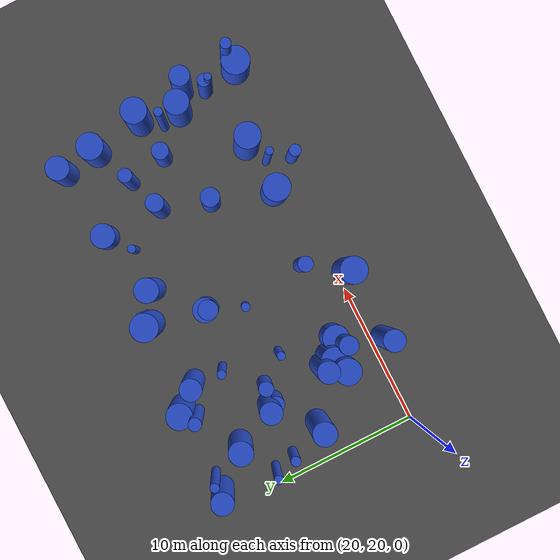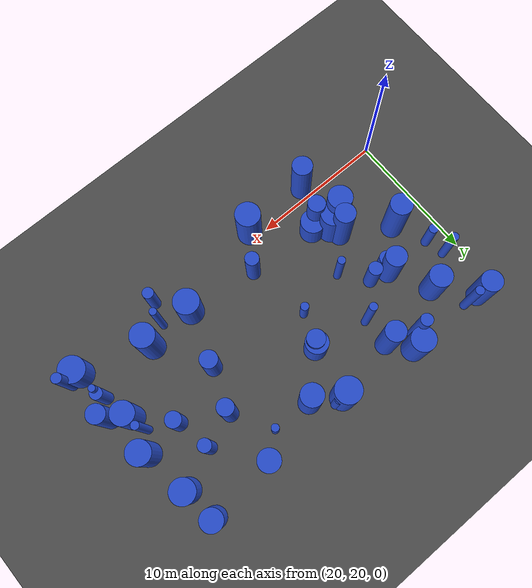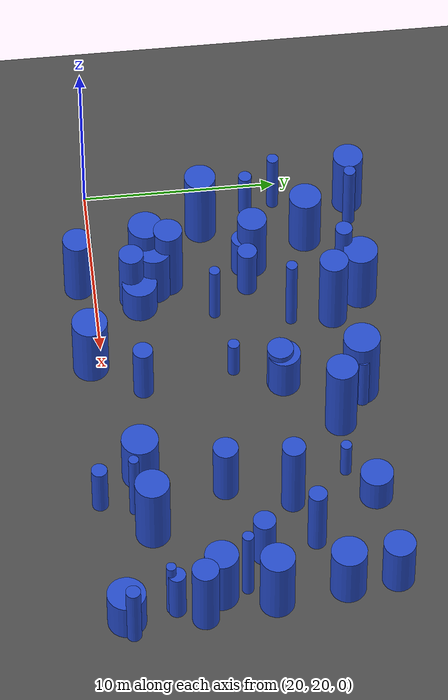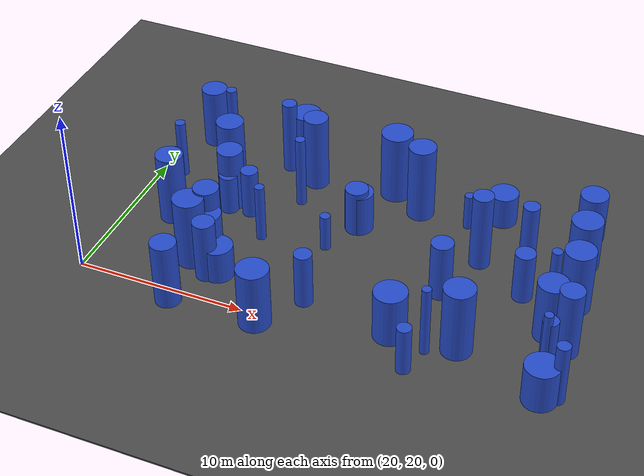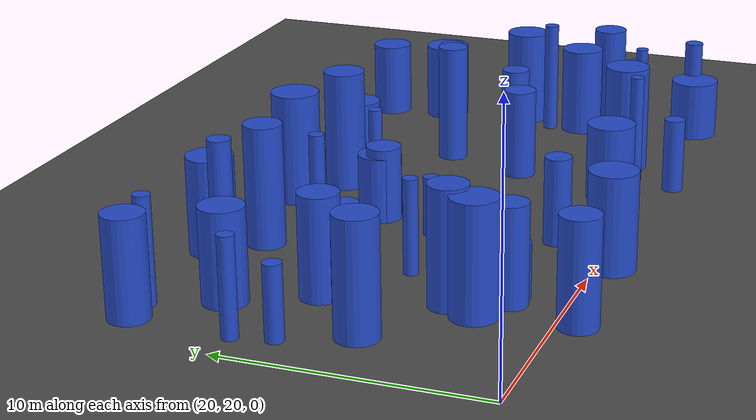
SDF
<sdf version="1.6">
 <world name="default">
  <model name="ground_plane">
   <static>1</static>
   <link name="link">
    <collision name="collision">
     <geometry><plane><normal>0 0 1</normal><size>100 100</size></plane></geometry>
     <surface><friction><ode><mu>100</mu><mu2>50</mu2></ode></friction></surface>
    </collision>
    <visual name="visual">
     <cast_shadows>0</cast_shadows>
     <geometry><plane><normal>0 0 1</normal><size>100 100</size></plane></geometry>
     <material>
      <script><uri>file://media/materials/scripts/gazebo.material</uri><name>Gazebo/Grey</name></script>
     </material>
    </visual>
   </link>
  </model>
  <model name="asphalt_plane">
   <static>1</static>
   <link name="link">
    <collision name="collision"><geometry><box><size>200 200 0.1</size></box></geometry></collision>
    <visual name="visual">
     <cast_shadows>0</cast_shadows>
     <geometry><box><size>200 200 0.1</size></box></geometry>
     <material>
      <script>
       <uri>model://asphalt_plane/materials/scripts</uri>
       <uri>model://asphalt_plane/materials/textures</uri>
       <name>vrc/asphalt</name>
      </script>
     </material>
    </visual>
   </link>
  </model>
  <model name="7">
   <static>0</static>
   <link name="link">
    <inertial>
     <mass>2</mass>
     <inertia>
      <ixx>0.928742</ixx>
      <ixy>0</ixy>
      <ixz>0</ixz>
      <iyy>0.928742</iyy>
      <iyz>0</iyz>
      <izz>0.0804717</izz>
     </inertia>
    </inertial>
    <collision name="collision">
     <geometry><cylinder><length>2.3089</length><radius>0.283675</radius></cylinder></geometry>
     <surface><contact><collide_without_contact>1</collide_without_contact></contact></surface>
    </collision>
    <visual name="visual">
     <geometry><cylinder><length>2.3089</length><radius>0.283675</radius></cylinder></geometry>
     <material>
      <script><uri>file://media/materials/scripts/gazebo.material</uri><name>Gazebo/Blue</name></script>
     </material>
    </visual>
    <gravity>0</gravity>
   </link>
   <pose>38.9814 31.6696 1.15445 0 -0 0</pose>
  </model>
  <model name="15">
   <static>0</static>
   <link name="link">
    <inertial>
     <mass>2</mass>
     <inertia><ixx>2.90388</ixx><ixy>0</ixy><ixz>0</ixz><iyy>2.90388</iyy><iyz>0</iyz><izz>0.578559</izz></inertia>
    </inertial>
    <collision name="collision">
     <geometry><cylinder><length>3.96076</length><radius>0.76063</radius></cylinder></geometry>
     <surface><contact><collide_without_contact>1</collide_without_contact></contact></surface>
    </collision>
    <visual name="visual">
     <geometry><cylinder><length>3.96076</length><radius>0.76063</radius></cylinder></geometry>
     <material>
      <script><uri>file://media/materials/scripts/gazebo.material</uri><name>Gazebo/Blue</name></script>
     </material>
    </visual>
    <gravity>0</gravity>
   </link>
   <pose>25.3755 28.3182 1.98038 0 -0 0</pose>
  </model>
  <model name="21">
   <static>0</static>
   <link name="link">
    <inertial>
     <mass>2</mass>
     <inertia><ixx>4.07181</ixx><ixy>0</ixy><ixz>0</ixz><iyy>4.07181</iyy><iyz>0</iyz><izz>0.543778</izz></inertia>
    </inertial>
    <collision name="collision">
     <geometry><cylinder><length>4.77488</length><radius>0.737413</radius></cylinder></geometry>
     <surface><contact><collide_without_contact>1</collide_without_contact></contact></surface>
    </collision>
    <visual name="visual">
     <geometry><cylinder><length>4.77488</length><radius>0.737413</radius></cylinder></geometry>
     <material>
      <script><uri>file://media/materials/scripts/gazebo.material</uri><name>Gazebo/Blue</name></script>
     </material>
    </visual>
    <gravity>0</gravity>
   </link>
   <pose>29.1484 32.1402 2.38744 0 -0 0</pose>
  </model>
  <model name="23">
   <static>0</static>
   <link name="link">
    <inertial>
     <mass>2</mass>
     <inertia><ixx>2.06721</ixx><ixy>0</ixy><ixz>0</ixz><iyy>2.06721</iyy><iyz>0</iyz><izz>0.898479</izz></inertia>
    </inertial>
    <collision name="collision">
     <geometry><cylinder><length>3.11573</length><radius>0.947881</radius></cylinder></geometry>
     <surface><contact><collide_without_contact>1</collide_without_contact></contact></surface>
    </collision>
    <visual name="visual">
     <geometry><cylinder><length>3.11573</length><radius>0.947881</radius></cylinder></geometry>
     <material>
      <script><uri>file://media/materials/scripts/gazebo.material</uri><name>Gazebo/Blue</name></script>
     </material>
    </visual>
    <gravity>0</gravity>
   </link>
   <pose>38.1808 21.3346 1.55787 0 -0 0</pose>
  </model>
  <model name="30">
   <static>0</static>
   <link name="link">
    <inertial>
     <mass>2</mass>
     <inertia><ixx>2.57065</ixx><ixy>0</ixy><ixz>0</ixz><iyy>2.57065</iyy><iyz>0</iyz><izz>0.140555</izz></inertia>
    </inertial>
    <collision name="collision">
     <geometry><cylinder><length>3.87327</length><radius>0.374907</radius></cylinder></geometry>
     <surface><contact><collide_without_contact>1</collide_without_contact></contact></surface>
    </collision>
    <visual name="visual">
     <geometry><cylinder><length>3.87327</length><radius>0.374907</radius></cylinder></geometry>
     <material>
      <script><uri>file://media/materials/scripts/gazebo.material</uri><name>Gazebo/Blue</name></script>
     </material>
    </visual>
    <gravity>0</gravity>
   </link>
   <pose>47.8314 20.152 1.93664 0 -0 0</pose>
  </model>
  <model name="33">
   <static>0</static>
   <link name="link">
    <inertial>
     <mass>2</mass>
     <inertia><ixx>3.30687</ixx><ixy>0</ixy><ixz>0</ixz><iyy>3.30687</iyy><iyz>0</iyz><izz>0.069358</izz></inertia>
    </inertial>
    <collision name="collision">
     <geometry><cylinder><length>4.43093</length><radius>0.263359</radius></cylinder></geometry>
     <surface><contact><collide_without_contact>1</collide_without_contact></contact></surface>
    </collision>
    <visual name="visual">
     <geometry><cylinder><length>4.43093</length><radius>0.263359</radius></cylinder></geometry>
     <material>
      <script><uri>file://media/materials/scripts/gazebo.material</uri><name>Gazebo/Blue</name></script>
     </material>
    </visual>
    <gravity>0</gravity>
   </link>
   <pose>40.3358 20.8522 2.21546 0 -0 0</pose>
  </model>
  <model name="40">
   <static>0</static>
   <link name="link">
    <inertial>
     <mass>2</mass>
     <inertia><ixx>3.12245</ixx><ixy>0</ixy><ixz>0</ixz><iyy>3.12245</iyy><iyz>0</iyz><izz>0.553682</izz></inertia>
    </inertial>
    <collision name="collision">
     <geometry><cylinder><length>4.13202</length><radius>0.744098</radius></cylinder></geometry>
     <surface><contact><collide_without_contact>1</collide_without_contact></contact></surface>
    </collision>
    <visual name="visual">
     <geometry><cylinder><length>4.13202</length><radius>0.744098</radius></cylinder></geometry>
     <material>
      <script><uri>file://media/materials/scripts/gazebo.material</uri><name>Gazebo/Blue</name></script>
     </material>
    </visual>
    <gravity>0</gravity>
   </link>
   <pose>25.9653 19.207 2.06601 0 -0 0</pose>
  </model>
  <model name="44">
   <static>0</static>
   <link name="link">
    <inertial>
     <mass>2</mass>
     <inertia><ixx>1.7448</ixx><ixy>0</ixy><ixz>0</ixz><iyy>1.7448</iyy><iyz>0</iyz><izz>0.25816</izz></inertia>
    </inertial>
    <collision name="collision">
     <geometry><cylinder><length>3.11357</length><radius>0.508094</radius></cylinder></geometry>
     <surface><contact><collide_without_contact>1</collide_without_contact></contact></surface>
    </collision>
    <visual name="visual">
     <geometry><cylinder><length>3.11357</length><radius>0.508094</radius></cylinder></geometry>
     <material>
      <script><uri>file://media/materials/scripts/gazebo.material</uri><name>Gazebo/Blue</name></script>
     </material>
    </visual>
    <gravity>0</gravity>
   </link>
   <pose>26.7685 27.9284 1.55679 0 -0 0</pose>
  </model>
  <model name="58">
   <static>0</static>
   <link name="link">
    <inertial>
     <mass>2</mass>
     <inertia><ixx>2.80734</ixx><ixy>0</ixy><ixz>0</ixz><iyy>2.80734</iyy><iyz>0</iyz><izz>0.790535</izz></inertia>
    </inertial>
    <collision name="collision">
     <geometry><cylinder><length>3.80426</length><radius>0.889121</radius></cylinder></geometry>
     <surface><contact><collide_without_contact>1</collide_without_contact></contact></surface>
    </collision>
    <visual name="visual">
     <geometry><cylinder><length>3.80426</length><radius>0.889121</radius></cylinder></geometry>
     <material>
      <script><uri>file://media/materials/scripts/gazebo.material</uri><name>Gazebo/Blue</name></script>
     </material>
    </visual>
    <gravity>0</gravity>
   </link>
   <pose>27.8441 33.6819 1.90213 0 -0 0</pose>
  </model>
  <model name="69">
   <static>0</static>
   <link name="link">
    <inertial>
     <mass>2</mass>
     <inertia><ixx>2.55552</ixx><ixy>0</ixy><ixz>0</ixz><iyy>2.55552</iyy><iyz>0</iyz><izz>0.698081</izz></inertia>
    </inertial>
    <collision name="collision">
     <geometry><cylinder><length>3.63853</length><radius>0.835512</radius></cylinder></geometry>
     <surface><contact><collide_without_contact>1</collide_without_contact></contact></surface>
    </collision>
    <visual name="visual">
     <geometry><cylinder><length>3.63853</length><radius>0.835512</radius></cylinder></geometry>
     <material>
      <script><uri>file://media/materials/scripts/gazebo.material</uri><name>Gazebo/Blue</name></script>
     </material>
    </visual>
    <gravity>0</gravity>
   </link>
   <pose>23.89 31.2537 1.81926 0 -0 0</pose>
  </model>
  <model name="78">
   <static>0</static>
   <link name="link">
    <inertial>
     <mass>2</mass>
     <inertia><ixx>3.89358</ixx><ixy>0</ixy><ixz>0</ixz><iyy>3.89358</iyy><iyz>0</iyz><izz>0.194985</izz></inertia>
    </inertial>
    <collision name="collision">
     <geometry><cylinder><length>4.77247</length><radius>0.441571</radius></cylinder></geometry>
     <surface><contact><collide_without_contact>1</collide_without_contact></contact></surface>
    </collision>
    <visual name="visual">
     <geometry><cylinder><length>4.77247</length><radius>0.441571</radius></cylinder></geometry>
     <material>
      <script><uri>file://media/materials/scripts/gazebo.material</uri><name>Gazebo/Blue</name></script>
     </material>
    </visual>
    <gravity>0</gravity>
   </link>
   <pose>27.1001 32.8841 2.38624 0 -0 0</pose>
  </model>
  <model name="80">
   <static>0</static>
   <link name="link">
    <inertial>
     <mass>2</mass>
     <inertia><ixx>4.09311</ixx><ixy>0</ixy><ixz>0</ixz><iyy>4.09311</iyy><iyz>0</iyz><izz>0.357033</izz></inertia>
    </inertial>
    <collision name="collision">
     <geometry><cylinder><length>4.8464</length><radius>0.597523</radius></cylinder></geometry>
     <surface><contact><collide_without_contact>1</collide_without_contact></contact></surface>
    </collision>
    <visual name="visual">
     <geometry><cylinder><length>4.8464</length><radius>0.597523</radius></cylinder></geometry>
     <material>
      <script><uri>file://media/materials/scripts/gazebo.material</uri><name>Gazebo/Blue</name></script>
     </material>
    </visual>
    <gravity>0</gravity>
   </link>
   <pose>40.6499 28.8101 2.4232 0 -0 0</pose>
  </model>
  <model name="81">
   <static>0</static>
   <link name="link">
    <inertial>
     <mass>2</mass>
     <inertia><ixx>3.58</ixx><ixy>0</ixy><ixz>0</ixz><iyy>3.58</iyy><iyz>0</iyz><izz>0.775805</izz></inertia>
    </inertial>
    <collision name="collision">
     <geometry><cylinder><length>4.37637</length><radius>0.880798</radius></cylinder></geometry>
     <surface><contact><collide_without_contact>1</collide_without_contact></contact></surface>
    </collision>
    <visual name="visual">
     <geometry><cylinder><length>4.37637</length><radius>0.880798</radius></cylinder></geometry>
     <material>
      <script><uri>file://media/materials/scripts/gazebo.material</uri><name>Gazebo/Blue</name></script>
     </material>
    </visual>
    <gravity>0</gravity>
   </link>
   <pose>41.8431 21.6383 2.18818 0 -0 0</pose>
  </model>
  <model name="82">
   <static>0</static>
   <link name="link">
    <inertial>
     <mass>2</mass>
     <inertia><ixx>3.70102</ixx><ixy>0</ixy><ixz>0</ixz><iyy>3.70102</iyy><iyz>0</iyz><izz>0.657066</izz></inertia>
    </inertial>
    <collision name="collision">
     <geometry><cylinder><length>4.49832</length><radius>0.810596</radius></cylinder></geometry>
     <surface><contact><collide_without_contact>1</collide_without_contact></contact></surface>
    </collision>
    <visual name="visual">
     <geometry><cylinder><length>4.49832</length><radius>0.810596</radius></cylinder></geometry>
     <material>
      <script><uri>file://media/materials/scripts/gazebo.material</uri><name>Gazebo/Blue</name></script>
     </material>
    </visual>
    <gravity>0</gravity>
   </link>
   <pose>22.7638 25.8733 2.24916 0 -0 0</pose>
  </model>
  <model name="83">
   <static>0</static>
   <link name="link">
    <inertial>
     <mass>2</mass>
     <inertia><ixx>1.72502</ixx><ixy>0</ixy><ixz>0</ixz><iyy>1.72502</iyy><iyz>0</iyz><izz>0.220377</izz></inertia>
    </inertial>
    <collision name="collision">
     <geometry><cylinder><length>3.11272</length><radius>0.469444</radius></cylinder></geometry>
     <surface><contact><collide_without_contact>1</collide_without_contact></contact></surface>
    </collision>
    <visual name="visual">
     <geometry><cylinder><length>3.11272</length><radius>0.469444</radius></cylinder></geometry>
     <material>
      <script><uri>file://media/materials/scripts/gazebo.material</uri><name>Gazebo/Blue</name></script>
     </material>
    </visual>
    <gravity>0</gravity>
   </link>
   <pose>26.6132 23.1771 1.55636 0 -0 0</pose>
  </model>
  <model name="88">
   <static>0</static>
   <link name="link">
    <inertial>
     <mass>2</mass>
     <inertia><ixx>4.23171</ixx><ixy>0</ixy><ixz>0</ixz><iyy>4.23171</iyy><iyz>0</iyz><izz>0.655264</izz></inertia>
    </inertial>
    <collision name="collision">
     <geometry><cylinder><length>4.83988</length><radius>0.809484</radius></cylinder></geometry>
     <surface><contact><collide_without_contact>1</collide_without_contact></contact></surface>
    </collision>
    <visual name="visual">
     <geometry><cylinder><length>4.83988</length><radius>0.809484</radius></cylinder></geometry>
     <material>
      <script><uri>file://media/materials/scripts/gazebo.material</uri><name>Gazebo/Blue</name></script>
     </material>
    </visual>
    <gravity>0</gravity>
   </link>
   <pose>35.9826 31.7684 2.41994 0 -0 0</pose>
  </model>
  <model name="89">
   <static>0</static>
   <link name="link">
    <inertial>
     <mass>2</mass>
     <inertia>
      <ixx>2.40436</ixx>
      <ixy>0</ixy>
      <ixz>0</ixz>
      <iyy>2.40436</iyy>
      <iyz>0</iyz>
      <izz>0.0933567</izz>
     </inertia>
    </inertial>
    <collision name="collision">
     <geometry><cylinder><length>3.76113</length><radius>0.305543</radius></cylinder></geometry>
     <surface><contact><collide_without_contact>1</collide_without_contact></contact></surface>
    </collision>
    <visual name="visual">
     <geometry><cylinder><length>3.76113</length><radius>0.305543</radius></cylinder></geometry>
     <material>
      <script><uri>file://media/materials/scripts/gazebo.material</uri><name>Gazebo/Blue</name></script>
     </material>
    </visual>
    <gravity>0</gravity>
   </link>
   <pose>21.3115 29.8257 1.88056 0 -0 0</pose>
  </model>
  <model name="92">
   <static>0</static>
   <link name="link">
    <inertial>
     <mass>2</mass>
     <inertia><ixx>1.49245</ixx><ixy>0</ixy><ixz>0</ixz><iyy>1.49245</iyy><iyz>0</iyz><izz>0.959766</izz></inertia>
    </inertial>
    <collision name="collision">
     <geometry><cylinder><length>2.46483</length><radius>0.979676</radius></cylinder></geometry>
     <surface><contact><collide_without_contact>1</collide_without_contact></contact></surface>
    </collision>
    <visual name="visual">
     <geometry><cylinder><length>2.46483</length><radius>0.979676</radius></cylinder></geometry>
     <material>
      <script><uri>file://media/materials/scripts/gazebo.material</uri><name>Gazebo/Blue</name></script>
     </material>
    </visual>
    <gravity>0</gravity>
   </link>
   <pose>46.9538 19.8742 1.23241 0 -0 0</pose>
  </model>
  <model name="97">
   <static>0</static>
   <link name="link">
    <inertial>
     <mass>2</mass>
     <inertia><ixx>1.05903</ixx><ixy>0</ixy><ixz>0</ixz><iyy>1.05903</iyy><iyz>0</iyz><izz>0.709056</izz></inertia>
    </inertial>
    <collision name="collision">
     <geometry><cylinder><length>2.05596</length><radius>0.842054</radius></cylinder></geometry>
     <surface><contact><collide_without_contact>1</collide_without_contact></contact></surface>
    </collision>
    <visual name="visual">
     <geometry><cylinder><length>2.05596</length><radius>0.842054</radius></cylinder></geometry>
     <material>
      <script><uri>file://media/materials/scripts/gazebo.material</uri><name>Gazebo/Blue</name></script>
     </material>
    </visual>
    <gravity>0</gravity>
   </link>
   <pose>40.648 33.0252 1.02798 0 -0 0</pose>
  </model>
  <model name="109">
   <static>0</static>
   <link name="link">
    <inertial>
     <mass>2</mass>
     <inertia>
      <ixx>2.86598</ixx>
      <ixy>0</ixy>
      <ixz>0</ixz>
      <iyy>2.86598</iyy>
      <iyz>0</iyz>
      <izz>0.0994086</izz>
     </inertia>
    </inertial>
    <collision name="collision">
     <geometry><cylinder><length>4.11067</length><radius>0.315291</radius></cylinder></geometry>
     <surface><contact><collide_without_contact>1</collide_without_contact></contact></surface>
    </collision>
    <visual name="visual">
     <geometry><cylinder><length>4.11067</length><radius>0.315291</radius></cylinder></geometry>
     <material>
      <script><uri>file://media/materials/scripts/gazebo.material</uri><name>Gazebo/Blue</name></script>
     </material>
    </visual>
    <gravity>0</gravity>
   </link>
   <pose>22.8186 33.6914 2.05534 0 -0 0</pose>
  </model>
  <model name="111">
   <static>0</static>
   <link name="link">
    <inertial>
     <mass>2</mass>
     <inertia><ixx>1.20961</ixx><ixy>0</ixy><ixz>0</ixz><iyy>1.20961</iyy><iyz>0</iyz><izz>0.298069</izz></inertia>
    </inertial>
    <collision name="collision">
     <geometry><cylinder><length>2.52259</length><radius>0.545957</radius></cylinder></geometry>
     <surface><contact><collide_without_contact>1</collide_without_contact></contact></surface>
    </collision>
    <visual name="visual">
     <geometry><cylinder><length>2.52259</length><radius>0.545957</radius></cylinder></geometry>
     <material>
      <script><uri>file://media/materials/scripts/gazebo.material</uri><name>Gazebo/Blue</name></script>
     </material>
    </visual>
    <gravity>0</gravity>
   </link>
   <pose>25.4669 27.7851 1.2613 0 -0 0</pose>
  </model>
  <model name="113">
   <static>0</static>
   <link name="link">
    <inertial>
     <mass>2</mass>
     <inertia><ixx>3.71494</ixx><ixy>0</ixy><ixz>0</ixz><iyy>3.71494</iyy><iyz>0</iyz><izz>0.086821</izz></inertia>
    </inertial>
    <collision name="collision">
     <geometry><cylinder><length>4.69352</length><radius>0.294654</radius></cylinder></geometry>
     <surface><contact><collide_without_contact>1</collide_without_contact></contact></surface>
    </collision>
    <visual name="visual">
     <geometry><cylinder><length>4.69352</length><radius>0.294654</radius></cylinder></geometry>
     <material>
      <script><uri>file://media/materials/scripts/gazebo.material</uri><name>Gazebo/Blue</name></script>
     </material>
    </visual>
    <gravity>0</gravity>
   </link>
   <pose>45.6716 26.0067 2.34676 0 -0 0</pose>
  </model>
  <model name="116">
   <static>0</static>
   <link name="link">
    <inertial>
     <mass>2</mass>
     <inertia><ixx>3.66438</ixx><ixy>0</ixy><ixz>0</ixz><iyy>3.66438</iyy><iyz>0</iyz><izz>0.791449</izz></inertia>
    </inertial>
    <collision name="collision">
     <geometry><cylinder><length>4.42853</length><radius>0.889634</radius></cylinder></geometry>
     <surface><contact><collide_without_contact>1</collide_without_contact></contact></surface>
    </collision>
    <visual name="visual">
     <geometry><cylinder><length>4.42853</length><radius>0.889634</radius></cylinder></geometry>
     <material>
      <script><uri>file://media/materials/scripts/gazebo.material</uri><name>Gazebo/Blue</name></script>
     </material>
    </visual>
    <gravity>0</gravity>
   </link>
   <pose>25.6012 22.7655 2.21427 0 -0 0</pose>
  </model>
  <model name="126">
   <static>0</static>
   <link name="link">
    <inertial>
     <mass>2</mass>
     <inertia><ixx>2.36095</ixx><ixy>0</ixy><ixz>0</ixz><iyy>2.36095</iyy><iyz>0</iyz><izz>0.846697</izz></inertia>
    </inertial>
    <collision name="collision">
     <geometry><cylinder><length>3.40963</length><radius>0.920162</radius></cylinder></geometry>
     <surface><contact><collide_without_contact>1</collide_without_contact></contact></surface>
    </collision>
    <visual name="visual">
     <geometry><cylinder><length>3.40963</length><radius>0.920162</radius></cylinder></geometry>
     <material>
      <script><uri>file://media/materials/scripts/gazebo.material</uri><name>Gazebo/Blue</name></script>
     </material>
    </visual>
    <gravity>0</gravity>
   </link>
   <pose>26.4193 23.1085 1.70482 0 -0 0</pose>
  </model>
  <model name="133">
   <static>0</static>
   <link name="link">
    <inertial>
     <mass>2</mass>
     <inertia><ixx>1.49924</ixx><ixy>0</ixy><ixz>0</ixz><iyy>1.49924</iyy><iyz>0</iyz><izz>0.70664</izz></inertia>
    </inertial>
    <collision name="collision">
     <geometry><cylinder><length>2.62212</length><radius>0.840619</radius></cylinder></geometry>
     <surface><contact><collide_without_contact>1</collide_without_contact></contact></surface>
    </collision>
    <visual name="visual">
     <geometry><cylinder><length>2.62212</length><radius>0.840619</radius></cylinder></geometry>
     <material>
      <script><uri>file://media/materials/scripts/gazebo.material</uri><name>Gazebo/Blue</name></script>
     </material>
    </visual>
    <gravity>0</gravity>
   </link>
   <pose>33.1535 29.158 1.31106 0 -0 0</pose>
  </model>
  <model name="135">
   <static>0</static>
   <link name="link">
    <inertial>
     <mass>2</mass>
     <inertia>
      <ixx>0.964582</ixx>
      <ixy>0</ixy>
      <ixz>0</ixz>
      <iyy>0.964582</iyy>
      <iyz>0</iyz>
      <izz>0.0928418</izz>
     </inertia>
    </inertial>
    <collision name="collision">
     <geometry><cylinder><length>2.34712</length><radius>0.304699</radius></cylinder></geometry>
     <surface><contact><collide_without_contact>1</collide_without_contact></contact></surface>
    </collision>
    <visual name="visual">
     <geometry><cylinder><length>2.34712</length><radius>0.304699</radius></cylinder></geometry>
     <material>
      <script><uri>file://media/materials/scripts/gazebo.material</uri><name>Gazebo/Blue</name></script>
     </material>
    </visual>
    <gravity>0</gravity>
   </link>
   <pose>32.105 26.6815 1.17356 0 -0 0</pose>
  </model>
  <model name="140">
   <static>0</static>
   <link name="link">
    <inertial>
     <mass>2</mass>
     <inertia><ixx>3.34818</ixx><ixy>0</ixy><ixz>0</ixz><iyy>3.34818</iyy><iyz>0</iyz><izz>0.460227</izz></inertia>
    </inertial>
    <collision name="collision">
     <geometry><cylinder><length>4.32532</length><radius>0.6784</radius></cylinder></geometry>
     <surface><contact><collide_without_contact>1</collide_without_contact></contact></surface>
    </collision>
    <visual name="visual">
     <geometry><cylinder><length>4.32532</length><radius>0.6784</radius></cylinder></geometry>
     <material>
      <script><uri>file://media/materials/scripts/gazebo.material</uri><name>Gazebo/Blue</name></script>
     </material>
    </visual>
    <gravity>0</gravity>
   </link>
   <pose>47.1941 23.7608 2.16266 0 -0 0</pose>
  </model>
  <model name="151">
   <static>0</static>
   <link name="link">
    <inertial>
     <mass>2</mass>
     <inertia>
      <ixx>0.742091</ixx>
      <ixy>0</ixy>
      <ixz>0</ixz>
      <iyy>0.742091</iyy>
      <iyz>0</iyz>
      <izz>0.0764885</izz>
     </inertia>
    </inertial>
    <collision name="collision">
     <geometry><cylinder><length>2.05501</length><radius>0.276566</radius></cylinder></geometry>
     <surface><contact><collide_without_contact>1</collide_without_contact></contact></surface>
    </collision>
    <visual name="visual">
     <geometry><cylinder><length>2.05501</length><radius>0.276566</radius></cylinder></geometry>
     <material>
      <script><uri>file://media/materials/scripts/gazebo.material</uri><name>Gazebo/Blue</name></script>
     </material>
    </visual>
    <gravity>0</gravity>
   </link>
   <pose>25.7522 22.968 1.02751 0 -0 0</pose>
  </model>
  <model name="153">
   <static>0</static>
   <link name="link">
    <inertial>
     <mass>2</mass>
     <inertia><ixx>1.95745</ixx><ixy>0</ixy><ixz>0</ixz><iyy>1.95745</iyy><iyz>0</iyz><izz>0.663319</izz></inertia>
    </inertial>
    <collision name="collision">
     <geometry><cylinder><length>3.12326</length><radius>0.814444</radius></cylinder></geometry>
     <surface><contact><collide_without_contact>1</collide_without_contact></contact></surface>
    </collision>
    <visual name="visual">
     <geometry><cylinder><length>3.12326</length><radius>0.814444</radius></cylinder></geometry>
     <material>
      <script><uri>file://media/materials/scripts/gazebo.material</uri><name>Gazebo/Blue</name></script>
     </material>
    </visual>
    <gravity>0</gravity>
   </link>
   <pose>45.7767 33.5144 1.56163 0 -0 0</pose>
  </model>
  <model name="158">
   <static>0</static>
   <link name="link">
    <inertial>
     <mass>2</mass>
     <inertia><ixx>2.88665</ixx><ixy>0</ixy><ixz>0</ixz><iyy>2.88665</iyy><iyz>0</iyz><izz>0.846285</izz></inertia>
    </inertial>
    <collision name="collision">
     <geometry><cylinder><length>3.84461</length><radius>0.919938</radius></cylinder></geometry>
     <surface><contact><collide_without_contact>1</collide_without_contact></contact></surface>
    </collision>
    <visual name="visual">
     <geometry><cylinder><length>3.84461</length><radius>0.919938</radius></cylinder></geometry>
     <material>
      <script><uri>file://media/materials/scripts/gazebo.material</uri><name>Gazebo/Blue</name></script>
     </material>
    </visual>
    <gravity>0</gravity>
   </link>
   <pose>31.1276 19.42 1.92231 0 -0 0</pose>
  </model>
  <model name="160">
   <static>0</static>
   <link name="link">
    <inertial>
     <mass>2</mass>
     <inertia><ixx>2.4096</ixx><ixy>0</ixy><ixz>0</ixz><iyy>2.4096</iyy><iyz>0</iyz><izz>0.0632609</izz></inertia>
    </inertial>
    <collision name="collision">
     <geometry><cylinder><length>3.77727</length><radius>0.251517</radius></cylinder></geometry>
     <surface><contact><collide_without_contact>1</collide_without_contact></contact></surface>
    </collision>
    <visual name="visual">
     <geometry><cylinder><length>3.77727</length><radius>0.251517</radius></cylinder></geometry>
     <material>
      <script><uri>file://media/materials/scripts/gazebo.material</uri><name>Gazebo/Blue</name></script>
     </material>
    </visual>
    <gravity>0</gravity>
   </link>
   <pose>46.4749 22.1377 1.88864 0 -0 0</pose>
  </model>
  <model name="166">
   <static>0</static>
   <link name="link">
    <inertial>
     <mass>2</mass>
     <inertia><ixx>2.66638</ixx><ixy>0</ixy><ixz>0</ixz><iyy>2.66638</iyy><iyz>0</iyz><izz>0.412659</izz></inertia>
    </inertial>
    <collision name="collision">
     <geometry><cylinder><length>3.84192</length><radius>0.642385</radius></cylinder></geometry>
     <surface><contact><collide_without_contact>1</collide_without_contact></contact></surface>
    </collision>
    <visual name="visual">
     <geometry><cylinder><length>3.84192</length><radius>0.642385</radius></cylinder></geometry>
     <material>
      <script><uri>file://media/materials/scripts/gazebo.material</uri><name>Gazebo/Blue</name></script>
     </material>
    </visual>
    <gravity>0</gravity>
   </link>
   <pose>26.9616 21.9047 1.92096 0 -0 0</pose>
  </model>
  <model name="169">
   <static>0</static>
   <link name="link">
    <inertial>
     <mass>2</mass>
     <inertia><ixx>3.08564</ixx><ixy>0</ixy><ixz>0</ixz><iyy>3.08564</iyy><iyz>0</iyz><izz>0.768449</izz></inertia>
    </inertial>
    <collision name="collision">
     <geometry><cylinder><length>4.02598</length><radius>0.876612</radius></cylinder></geometry>
     <surface><contact><collide_without_contact>1</collide_without_contact></contact></surface>
    </collision>
    <visual name="visual">
     <geometry><cylinder><length>4.02598</length><radius>0.876612</radius></cylinder></geometry>
     <material>
      <script><uri>file://media/materials/scripts/gazebo.material</uri><name>Gazebo/Blue</name></script>
     </material>
    </visual>
    <gravity>0</gravity>
   </link>
   <pose>46.6286 27.3684 2.01299 0 -0 0</pose>
  </model>
  <model name="170">
   <static>0</static>
   <link name="link">
    <inertial>
     <mass>2</mass>
     <inertia><ixx>3.0652</ixx><ixy>0</ixy><ixz>0</ixz><iyy>3.0652</iyy><iyz>0</iyz><izz>0.224651</izz></inertia>
    </inertial>
    <collision name="collision">
     <geometry><cylinder><length>4.20919</length><radius>0.473974</radius></cylinder></geometry>
     <surface><contact><collide_without_contact>1</collide_without_contact></contact></surface>
    </collision>
    <visual name="visual">
     <geometry><cylinder><length>4.20919</length><radius>0.473974</radius></cylinder></geometry>
     <material>
      <script><uri>file://media/materials/scripts/gazebo.material</uri><name>Gazebo/Blue</name></script>
     </material>
    </visual>
    <gravity>0</gravity>
   </link>
   <pose>43.1509 29.7343 2.10459 0 -0 0</pose>
  </model>
  <model name="181">
   <static>0</static>
   <link name="link">
    <inertial>
     <mass>2</mass>
     <inertia><ixx>1.14552</ixx><ixy>0</ixy><ixz>0</ixz><iyy>1.14552</iyy><iyz>0</iyz><izz>0.824375</izz></inertia>
    </inertial>
    <collision name="collision">
     <geometry><cylinder><length>2.09762</length><radius>0.907951</radius></cylinder></geometry>
     <surface><contact><collide_without_contact>1</collide_without_contact></contact></surface>
    </collision>
    <visual name="visual">
     <geometry><cylinder><length>2.09762</length><radius>0.907951</radius></cylinder></geometry>
     <material>
      <script><uri>file://media/materials/scripts/gazebo.material</uri><name>Gazebo/Blue</name></script>
     </material>
    </visual>
    <gravity>0</gravity>
   </link>
   <pose>27.5067 22.2685 1.04881 0 -0 0</pose>
  </model>
  <model name="182">
   <static>0</static>
   <link name="link">
    <inertial>
     <mass>2</mass>
     <inertia><ixx>2.11662</ixx><ixy>0</ixy><ixz>0</ixz><iyy>2.11662</iyy><iyz>0</iyz><izz>0.267253</izz></inertia>
    </inertial>
    <collision name="collision">
     <geometry><cylinder><length>3.44934</length><radius>0.516965</radius></cylinder></geometry>
     <surface><contact><collide_without_contact>1</collide_without_contact></contact></surface>
    </collision>
    <visual name="visual">
     <geometry><cylinder><length>3.44934</length><radius>0.516965</radius></cylinder></geometry>
     <material>
      <script><uri>file://media/materials/scripts/gazebo.material</uri><name>Gazebo/Blue</name></script>
     </material>
    </visual>
    <gravity>0</gravity>
   </link>
   <pose>32.8767 21.9708 1.72467 0 -0 0</pose>
  </model>
  <model name="183">
   <static>0</static>
   <link name="link">
    <inertial>
     <mass>2</mass>
     <inertia><ixx>1.76238</ixx><ixy>0</ixy><ixz>0</ixz><iyy>1.76238</iyy><iyz>0</iyz><izz>0.200657</izz></inertia>
    </inertial>
    <collision name="collision">
     <geometry><cylinder><length>3.1579</length><radius>0.447948</radius></cylinder></geometry>
     <surface><contact><collide_without_contact>1</collide_without_contact></contact></surface>
    </collision>
    <visual name="visual">
     <geometry><cylinder><length>3.1579</length><radius>0.447948</radius></cylinder></geometry>
     <material>
      <script><uri>file://media/materials/scripts/gazebo.material</uri><name>Gazebo/Blue</name></script>
     </material>
    </visual>
    <gravity>0</gravity>
   </link>
   <pose>46.5479 22.4078 1.57895 0 -0 0</pose>
  </model>
  <model name="186">
   <static>0</static>
   <link name="link">
    <inertial>
     <mass>2</mass>
     <inertia><ixx>1.41784</ixx><ixy>0</ixy><ixz>0</ixz><iyy>1.41784</iyy><iyz>0</iyz><izz>0.118044</izz></inertia>
    </inertial>
    <collision name="collision">
     <geometry><cylinder><length>2.85533</length><radius>0.343576</radius></cylinder></geometry>
     <surface><contact><collide_without_contact>1</collide_without_contact></contact></surface>
    </collision>
    <visual name="visual">
     <geometry><cylinder><length>2.85533</length><radius>0.343576</radius></cylinder></geometry>
     <material>
      <script><uri>file://media/materials/scripts/gazebo.material</uri><name>Gazebo/Blue</name></script>
     </material>
    </visual>
    <gravity>0</gravity>
   </link>
   <pose>21.624 28.346 1.42766 0 -0 0</pose>
  </model>
  <model name="189">
   <static>0</static>
   <link name="link">
    <inertial>
     <mass>2</mass>
     <inertia><ixx>1.59975</ixx><ixy>0</ixy><ixz>0</ixz><iyy>1.59975</iyy><iyz>0</iyz><izz>0.168342</izz></inertia>
    </inertial>
    <collision name="collision">
     <geometry><cylinder><length>3.01554</length><radius>0.410295</radius></cylinder></geometry>
     <surface><contact><collide_without_contact>1</collide_without_contact></contact></surface>
    </collision>
    <visual name="visual">
     <geometry><cylinder><length>3.01554</length><radius>0.410295</radius></cylinder></geometry>
     <material>
      <script><uri>file://media/materials/scripts/gazebo.material</uri><name>Gazebo/Blue</name></script>
     </material>
    </visual>
    <gravity>0</gravity>
   </link>
   <pose>39.7948 19.1589 1.50777 0 -0 0</pose>
  </model>
  <model name="190">
   <static>0</static>
   <link name="link">
    <inertial>
     <mass>2</mass>
     <inertia><ixx>2.65867</ixx><ixy>0</ixy><ixz>0</ixz><iyy>2.65867</iyy><iyz>0</iyz><izz>0.73167</izz></inertia>
    </inertial>
    <collision name="collision">
     <geometry><cylinder><length>3.70904</length><radius>0.855377</radius></cylinder></geometry>
     <surface><contact><collide_without_contact>1</collide_without_contact></contact></surface>
    </collision>
    <visual name="visual">
     <geometry><cylinder><length>3.70904</length><radius>0.855377</radius></cylinder></geometry>
     <material>
      <script><uri>file://media/materials/scripts/gazebo.material</uri><name>Gazebo/Blue</name></script>
     </material>
    </visual>
    <gravity>0</gravity>
   </link>
   <pose>45.9598 24.6715 1.85452 0 -0 0</pose>
  </model>
  <model name="192">
   <static>0</static>
   <link name="link">
    <inertial>
     <mass>2</mass>
     <inertia><ixx>2.07774</ixx><ixy>0</ixy><ixz>0</ixz><iyy>2.07774</iyy><iyz>0</iyz><izz>0.131573</izz></inertia>
    </inertial>
    <collision name="collision">
     <geometry><cylinder><length>3.47444</length><radius>0.36273</radius></cylinder></geometry>
     <surface><contact><collide_without_contact>1</collide_without_contact></contact></surface>
    </collision>
    <visual name="visual">
     <geometry><cylinder><length>3.47444</length><radius>0.36273</radius></cylinder></geometry>
     <material>
      <script><uri>file://media/materials/scripts/gazebo.material</uri><name>Gazebo/Blue</name></script>
     </material>
    </visual>
    <gravity>0</gravity>
   </link>
   <pose>34.6264 33.0363 1.73722 0 -0 0</pose>
  </model>
  <model name="204">
   <static>0</static>
   <link name="link">
    <inertial>
     <mass>2</mass>
     <inertia><ixx>2.81573</ixx><ixy>0</ixy><ixz>0</ixz><iyy>2.81573</iyy><iyz>0</iyz><izz>0.606996</izz></inertia>
    </inertial>
    <collision name="collision">
     <geometry><cylinder><length>3.88244</length><radius>0.7791</radius></cylinder></geometry>
     <surface><contact><collide_without_contact>1</collide_without_contact></contact></surface>
    </collision>
    <visual name="visual">
     <geometry><cylinder><length>3.88244</length><radius>0.7791</radius></cylinder></geometry>
     <material>
      <script><uri>file://media/materials/scripts/gazebo.material</uri><name>Gazebo/Blue</name></script>
     </material>
    </visual>
    <gravity>0</gravity>
   </link>
   <pose>21.6187 33.7462 1.94122 0 -0 0</pose>
  </model>
  <model name="209">
   <static>0</static>
   <link name="link">
    <inertial>
     <mass>2</mass>
     <inertia><ixx>3.73086</ixx><ixy>0</ixy><ixz>0</ixz><iyy>3.73086</iyy><iyz>0</iyz><izz>0.558149</izz></inertia>
    </inertial>
    <collision name="collision">
     <geometry><cylinder><length>4.5509</length><radius>0.747093</radius></cylinder></geometry>
     <surface><contact><collide_without_contact>1</collide_without_contact></contact></surface>
    </collision>
    <visual name="visual">
     <geometry><cylinder><length>4.5509</length><radius>0.747093</radius></cylinder></geometry>
     <material>
      <script><uri>file://media/materials/scripts/gazebo.material</uri><name>Gazebo/Blue</name></script>
     </material>
    </visual>
    <gravity>0</gravity>
   </link>
   <pose>26.1448 23.8823 2.27545 0 -0 0</pose>
  </model>
  <model name="221">
   <static>0</static>
   <link name="link">
    <inertial>
     <mass>2</mass>
     <inertia>
      <ixx>3.59833</ixx>
      <ixy>0</ixy>
      <ixz>0</ixz>
      <iyy>3.59833</iyy>
      <iyz>0</iyz>
      <izz>0.0862333</izz>
     </inertia>
    </inertial>
    <collision name="collision">
     <geometry><cylinder><length>4.61858</length><radius>0.293655</radius></cylinder></geometry>
     <surface><contact><collide_without_contact>1</collide_without_contact></contact></surface>
    </collision>
    <visual name="visual">
     <geometry><cylinder><length>4.61858</length><radius>0.293655</radius></cylinder></geometry>
     <material>
      <script><uri>file://media/materials/scripts/gazebo.material</uri><name>Gazebo/Blue</name></script>
     </material>
    </visual>
    <gravity>0</gravity>
   </link>
   <pose>29.1156 29.9785 2.30929 0 -0 0</pose>
  </model>
  <model name="222">
   <static>0</static>
   <link name="link">
    <inertial>
     <mass>2</mass>
     <inertia><ixx>3.75545</ixx><ixy>0</ixy><ixz>0</ixz><iyy>3.75545</iyy><iyz>0</iyz><izz>0.888662</izz></inertia>
    </inertial>
    <collision name="collision">
     <geometry><cylinder><length>4.45721</length><radius>0.942689</radius></cylinder></geometry>
     <surface><contact><collide_without_contact>1</collide_without_contact></contact></surface>
    </collision>
    <visual name="visual">
     <geometry><cylinder><length>4.45721</length><radius>0.942689</radius></cylinder></geometry>
     <material>
      <script><uri>file://media/materials/scripts/gazebo.material</uri><name>Gazebo/Blue</name></script>
     </material>
    </visual>
    <gravity>0</gravity>
   </link>
   <pose>33.9636 33.0053 2.2286 0 -0 0</pose>
  </model>
  <model name="223">
   <static>0</static>
   <link name="link">
    <inertial>
     <mass>2</mass>
     <inertia><ixx>2.43161</ixx><ixy>0</ixy><ixz>0</ixz><iyy>2.43161</iyy><iyz>0</iyz><izz>0.414672</izz></inertia>
    </inertial>
    <collision name="collision">
     <geometry><cylinder><length>3.65317</length><radius>0.643951</radius></cylinder></geometry>
     <surface><contact><collide_without_contact>1</collide_without_contact></contact></surface>
    </collision>
    <visual name="visual">
     <geometry><cylinder><length>3.65317</length><radius>0.643951</radius></cylinder></geometry>
     <material>
      <script><uri>file://media/materials/scripts/gazebo.material</uri><name>Gazebo/Blue</name></script>
     </material>
    </visual>
    <gravity>0</gravity>
   </link>
   <pose>39.5123 25.5214 1.82658 0 -0 0</pose>
  </model>
  <model name="225">
   <static>0</static>
   <link name="link">
    <inertial>
     <mass>2</mass>
     <inertia><ixx>1.70553</ixx><ixy>0</ixy><ixz>0</ixz><iyy>1.70553</iyy><iyz>0</iyz><izz>0.458837</izz></inertia>
    </inertial>
    <collision name="collision">
     <geometry><cylinder><length>2.97602</length><radius>0.677375</radius></cylinder></geometry>
     <surface><contact><collide_without_contact>1</collide_without_contact></contact></surface>
    </collision>
    <visual name="visual">
     <geometry><cylinder><length>2.97602</length><radius>0.677375</radius></cylinder></geometry>
     <material>
      <script><uri>file://media/materials/scripts/gazebo.material</uri><name>Gazebo/Blue</name></script>
     </material>
    </visual>
    <gravity>0</gravity>
   </link>
   <pose>33.0921 28.9664 1.48801 0 -0 0</pose>
  </model>
  <model name="235">
   <static>0</static>
   <link name="link">
    <inertial>
     <mass>2</mass>
     <inertia><ixx>1.82247</ixx><ixy>0</ixy><ixz>0</ixz><iyy>1.82247</iyy><iyz>0</iyz><izz>0.337117</izz></inertia>
    </inertial>
    <collision name="collision">
     <geometry><cylinder><length>3.15015</length><radius>0.580618</radius></cylinder></geometry>
     <surface><contact><collide_without_contact>1</collide_without_contact></contact></surface>
    </collision>
    <visual name="visual">
     <geometry><cylinder><length>3.15015</length><radius>0.580618</radius></cylinder></geometry>
     <material>
      <script><uri>file://media/materials/scripts/gazebo.material</uri><name>Gazebo/Blue</name></script>
     </material>
    </visual>
    <gravity>0</gravity>
   </link>
   <pose>43.7431 27.0287 1.57508 0 -0 0</pose>
  </model>
  <model name="246">
   <static>0</static>
   <link name="link">
    <inertial>
     <mass>2</mass>
     <inertia>
      <ixx>2.30914</ixx>
      <ixy>0</ixy>
      <ixz>0</ixz>
      <iyy>2.30914</iyy>
      <iyz>0</iyz>
      <izz>0.0802762</izz>
     </inertia>
    </inertial>
    <collision name="collision">
     <geometry><cylinder><length>3.68972</length><radius>0.283331</radius></cylinder></geometry>
     <surface><contact><collide_without_contact>1</collide_without_contact></contact></surface>
    </collision>
    <visual name="visual">
     <geometry><cylinder><length>3.68972</length><radius>0.283331</radius></cylinder></geometry>
     <material>
      <script><uri>file://media/materials/scripts/gazebo.material</uri><name>Gazebo/Blue</name></script>
     </material>
    </visual>
    <gravity>0</gravity>
   </link>
   <pose>28.3359 26.0785 1.84486 0 -0 0</pose>
  </model>
  <model name="249">
   <static>0</static>
   <link name="link">
    <inertial>
     <mass>2</mass>
     <inertia><ixx>2.14935</ixx><ixy>0</ixy><ixz>0</ixz><iyy>2.14935</iyy><iyz>0</iyz><izz>0.828325</izz></inertia>
    </inertial>
    <collision name="collision">
     <geometry><cylinder><length>3.22663</length><radius>0.910124</radius></cylinder></geometry>
     <surface><contact><collide_without_contact>1</collide_without_contact></contact></surface>
    </collision>
    <visual name="visual">
     <geometry><cylinder><length>3.22663</length><radius>0.910124</radius></cylinder></geometry>
     <material>
      <script><uri>file://media/materials/scripts/gazebo.material</uri><name>Gazebo/Blue</name></script>
     </material>
    </visual>
    <gravity>0</gravity>
   </link>
   <pose>46.0739 30.9725 1.61331 0 -0 0</pose>
  </model>
 </world>
</sdf>
